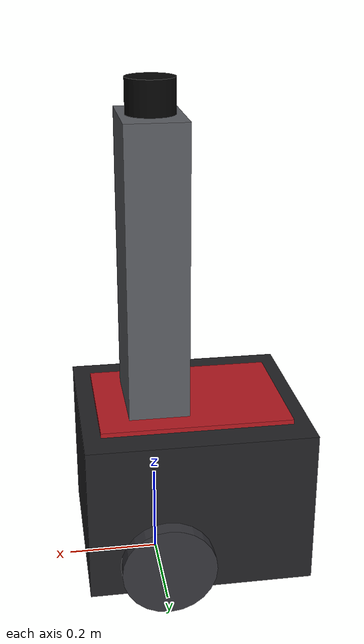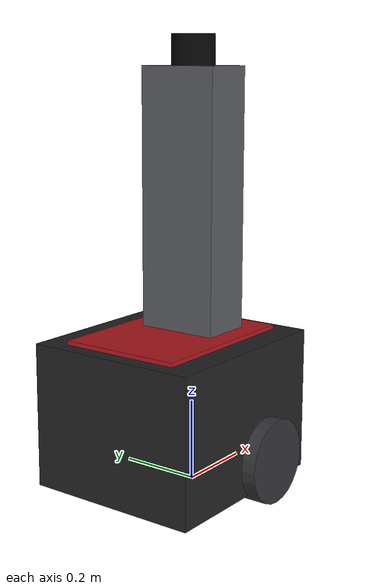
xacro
<?xml version="1.0"?>
<robot name="tetra_dsv_s" xmlns:xacro="http://www.ros.org/wiki/xacro">

  <xacro:arg name="use_gazebo" default="false"/>
  <!-- Passed through to the Gazebo systems; see tetra_dsv_s.gazebo.xacro. -->
  <xacro:arg name="odometry_source" default="wheel"/>

  <xacro:include filename="$(find tetra_dsv_s_description)/urdf/common.xacro"/>
  <xacro:include filename="$(find tetra_dsv_s_description)/urdf/tetra_dsv_s_base.xacro"/>
  <xacro:include filename="$(find tetra_dsv_s_description)/urdf/sensor_mast.xacro"/>

  <xacro:if value="$(arg use_gazebo)">
    <xacro:include filename="$(find tetra_dsv_s_description)/urdf/tetra_dsv_s.gazebo.xacro"/>
  </xacro:if>

</robot>

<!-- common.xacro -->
<robot xmlns:xacro="http://www.ros.org/wiki/xacro">

  <!-- Materials                                                             -->
  <material name="tetra_body">   <color rgba="0.13 0.13 0.14 1.0"/></material>
  <material name="tetra_accent"> <color rgba="0.70 0.09 0.12 1.0"/></material>
  <material name="tetra_wheel">  <color rgba="0.20 0.20 0.22 1.0"/></material>
  <material name="tetra_caster"> <color rgba="0.75 0.78 0.45 1.0"/></material>
  <material name="mast_gray">    <color rgba="0.35 0.36 0.38 1.0"/></material>
  <material name="sensor_black"> <color rgba="0.02 0.02 0.02 1.0"/></material>
  <material name="frame_marker"> <color rgba="0.0  0.8  0.0  0.5"/></material>

  <!-- Inertia helpers                                                       -->
  <xacro:macro name="box_inertial" params="mass x y z *origin">
    <inertial>
      <xacro:insert_block name="origin"/>
      <mass value="${mass}"/>
      <inertia ixx="${mass * (y*y + z*z) / 12.0}" ixy="0" ixz="0"
               iyy="${mass * (x*x + z*z) / 12.0}" iyz="0"
               izz="${mass * (x*x + y*y) / 12.0}"/>
    </inertial>
  </xacro:macro>

  <!-- Cylinder spinning about its own Z; caller rotates via *origin. -->
  <xacro:macro name="cylinder_inertial" params="mass radius length *origin">
    <inertial>
      <xacro:insert_block name="origin"/>
      <mass value="${mass}"/>
      <inertia ixx="${mass * (3.0*radius*radius + length*length) / 12.0}" ixy="0" ixz="0"
               iyy="${mass * (3.0*radius*radius + length*length) / 12.0}" iyz="0"
               izz="${mass * radius * radius / 2.0}"/>
    </inertial>
  </xacro:macro>

  <xacro:macro name="sphere_inertial" params="mass radius *origin">
    <inertial>
      <xacro:insert_block name="origin"/>
      <mass value="${mass}"/>
      <inertia ixx="${2.0 * mass * radius * radius / 5.0}" ixy="0" ixz="0"
               iyy="${2.0 * mass * radius * radius / 5.0}" iyz="0"
               izz="${2.0 * mass * radius * radius / 5.0}"/>
    </inertial>
  </xacro:macro>

</robot>

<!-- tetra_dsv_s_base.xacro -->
<robot xmlns:xacro="http://www.ros.org/wiki/xacro">

  <!-- Official parameters                                                   -->

  <!-- Overall envelope: 485 x 430 x 380 mm  [MAN 표 1-1] -->
  <xacro:property name="base_x_size" value="0.485"/>
  <xacro:property name="base_y_size" value="0.430"/>
  <xacro:property name="base_z_size" value="0.380"/>

  <!-- Body centre offset from base_link, from the base_footprint outline
       box (0.4855 x 0.430) drawn at x = -0.07525 in [URDF]. -->
  <xacro:property name="body_center_x" value="-0.07525"/>

  <xacro:property name="wheel_radius"     value="0.1015"/>
  <xacro:property name="wheel_separation" value="0.438"/>
  <xacro:property name="wheel_width"      value="0.060"/>
  <xacro:property name="wheel_offset_x"   value="0.0"/>

  <xacro:property name="caster_offset_x" value="-0.230"/>
  <xacro:property name="caster_radius"   value="0.0475"/>

  <!-- Mass: robot 28 kg, max payload 30 kg [MAN 표 1-1].
       Split so the chassis carries the bulk and the wheels a plausible share
       of the 100 W PMSM + 20:1 reducer assemblies. -->
  <xacro:property name="chassis_mass" value="22.0"/>
  <xacro:property name="wheel_mass"   value="2.5"/>
  <xacro:property name="caster_mass"  value="0.5"/>

  <xacro:property name="ground_clearance" value="0.0325"/>
  <xacro:property name="body_height" value="${base_z_size - ground_clearance}"/>
  <xacro:property name="body_center_z"
                  value="${ground_clearance + body_height / 2.0 - wheel_radius}"/>

  <!-- Centre of gravity, 129.16 mm above the chassis underside per 그림 2-2. -->
  <xacro:property name="cog_x" value="${body_center_x}"/>
  <xacro:property name="cog_z" value="${ground_clearance + 0.12916 - wheel_radius}"/>

  <!-- Top surface of the mount plate, in base_link coordinates.
       Total height 380 mm above ground, base_link sits at wheel_radius. -->
  <xacro:property name="mount_plate_z" value="${base_z_size - wheel_radius}"/>

  <xacro:property name="max_linear_velocity"  value="1.5"/>
  <xacro:property name="max_angular_velocity" value="1.5"/>

  <!-- Chassis                                                               -->
  <link name="base_footprint"/>

  <joint name="base_footprint_joint" type="fixed">
    <parent link="base_footprint"/>
    <child  link="base_link"/>
    <origin xyz="0 0 ${wheel_radius}" rpy="0 0 0"/>
  </joint>

  <link name="base_link">
    <xacro:box_inertial mass="${chassis_mass}"
                        x="${base_x_size}" y="${base_y_size}" z="${body_height}">
      <origin xyz="${cog_x} 0 ${cog_z}" rpy="0 0 0"/>
    </xacro:box_inertial>

    <!-- Body shell: chassis underside up to the mount plate. Its bottom face
         sits at ground_clearance, NOT at the ground - see the note there. -->
    <visual>
      <origin xyz="${body_center_x} 0 ${body_center_z}" rpy="0 0 0"/>
      <geometry>
        <box size="${base_x_size} ${base_y_size} ${body_height}"/>
      </geometry>
      <material name="tetra_body"/>
    </visual>
    <collision>
      <origin xyz="${body_center_x} 0 ${body_center_z}" rpy="0 0 0"/>
      <geometry>
        <box size="${base_x_size} ${base_y_size} ${body_height}"/>
      </geometry>
    </collision>

    <!-- Mount plate: 409.9 x 300 mm tap field [MAN 그림 2-3]. Visual only. -->
    <visual>
      <origin xyz="${body_center_x} 0 ${mount_plate_z + 0.005}" rpy="0 0 0"/>
      <geometry>
        <box size="0.4099 0.300 0.010"/>
      </geometry>
      <material name="tetra_accent"/>
    </visual>
  </link>

  <!-- Drive wheels                                                          -->
  <xacro:macro name="drive_wheel" params="prefix reflect">
    <link name="${prefix}_wheel_link">
      <xacro:cylinder_inertial mass="${wheel_mass}"
                               radius="${wheel_radius}" length="${wheel_width}">
        <origin xyz="0 0 0" rpy="${pi/2.0} 0 0"/>
      </xacro:cylinder_inertial>
      <visual>
        <origin xyz="0 0 0" rpy="${pi/2.0} 0 0"/>
        <geometry>
          <cylinder radius="${wheel_radius}" length="${wheel_width}"/>
        </geometry>
        <material name="tetra_wheel"/>
      </visual>
      <collision>
        <origin xyz="0 0 0" rpy="${pi/2.0} 0 0"/>
        <geometry>
          <cylinder radius="${wheel_radius}" length="${wheel_width}"/>
        </geometry>
      </collision>
    </link>

    <joint name="${prefix}_wheel_joint" type="continuous">
      <parent link="base_link"/>
      <child  link="${prefix}_wheel_link"/>
      <origin xyz="${wheel_offset_x} ${reflect * wheel_separation / 2.0} 0" rpy="0 0 0"/>
      <axis xyz="0 1 0"/>
      <dynamics damping="0.05" friction="0.1"/>
    </joint>
  </xacro:macro>

  <xacro:drive_wheel prefix="left"  reflect="1"/>
  <xacro:drive_wheel prefix="right" reflect="-1"/>

  <!-- Rear caster                                                           -->
  <link name="rear_caster_link">
    <xacro:sphere_inertial mass="${caster_mass}" radius="${caster_radius}">
      <origin xyz="0 0 0" rpy="0 0 0"/>
    </xacro:sphere_inertial>
    <visual>
      <origin xyz="0 0 0" rpy="0 0 0"/>
      <geometry><sphere radius="${caster_radius}"/></geometry>
      <material name="tetra_caster"/>
    </visual>
    <collision>
      <origin xyz="0 0 0" rpy="0 0 0"/>
      <geometry><sphere radius="${caster_radius}"/></geometry>
    </collision>
  </link>

  <joint name="rear_caster_joint" type="continuous">
    <parent link="base_link"/>
    <child  link="rear_caster_link"/>
    <origin xyz="${caster_offset_x} 0 ${caster_radius - wheel_radius}" rpy="0 0 0"/>
    <axis xyz="0 0 1"/>
    <dynamics damping="0.001" friction="0.0"/>
  </joint>

  <!-- On-board IMU (iAHRS). Pose from [URDF] base_link_to_imu_link.          -->
  <link name="imu_link"/>
  <joint name="imu_joint" type="fixed">
    <parent link="base_link"/>
    <child  link="imu_link"/>
    <origin xyz="0 0 0.232" rpy="0 0 0"/>
  </joint>

</robot>

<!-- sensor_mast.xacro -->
<robot xmlns:xacro="http://www.ros.org/wiki/xacro">

  <!-- Mast geometry                                                         -->
  <xacro:property name="mast_x_size" value="0.130"/>   <!-- fore-aft  -->
  <xacro:property name="mast_y_size" value="0.200"/>   <!-- left-right -->
  <xacro:property name="mast_z_size" value="0.630"/>
  <xacro:property name="mast_mass"   value="3.0"/>

  <!-- Planar placement on the mount plate. Measure and correct these two. -->
  <xacro:property name="mast_offset_x" value="0.0"/>
  <xacro:property name="mast_offset_y" value="0.0"/>

  <!-- Derived heights, all in base_link coordinates. -->
  <xacro:property name="mast_base_z"   value="${mount_plate_z}"/>
  <xacro:property name="mast_center_z" value="${mast_base_z + mast_z_size / 2.0}"/>
  <xacro:property name="mast_top_z"    value="${mast_base_z + mast_z_size}"/>

  <!-- Velodyne VLP-16 (datasheet: 103.3 mm dia, 71.7 mm tall, 0.83 kg)      -->
  <!-- Optical centre sits 37.7 mm above the mounting face.                  -->
  <xacro:property name="vlp16_radius"       value="0.05165"/>
  <xacro:property name="vlp16_height"       value="0.0717"/>
  <xacro:property name="vlp16_mass"         value="0.83"/>
  <xacro:property name="vlp16_optical_rise" value="0.0377"/>

  <!-- Mast column                                                           -->
  <link name="lidar_mast_link">
    <xacro:box_inertial mass="${mast_mass}"
                        x="${mast_x_size}" y="${mast_y_size}" z="${mast_z_size}">
      <origin xyz="0 0 0" rpy="0 0 0"/>
    </xacro:box_inertial>
    <visual>
      <origin xyz="0 0 0" rpy="0 0 0"/>
      <geometry>
        <box size="${mast_x_size} ${mast_y_size} ${mast_z_size}"/>
      </geometry>
      <material name="mast_gray"/>
    </visual>
    <collision>
      <origin xyz="0 0 0" rpy="0 0 0"/>
      <geometry>
        <box size="${mast_x_size} ${mast_y_size} ${mast_z_size}"/>
      </geometry>
    </collision>
  </link>

  <joint name="lidar_mast_joint" type="fixed">
    <parent link="base_link"/>
    <child  link="lidar_mast_link"/>
    <origin xyz="${mast_offset_x} ${mast_offset_y} ${mast_center_z}" rpy="0 0 0"/>
  </joint>

  <!-- VLP-16 on top of the mast                                             -->
  <link name="velodyne_link">
    <xacro:cylinder_inertial mass="${vlp16_mass}"
                             radius="${vlp16_radius}" length="${vlp16_height}">
      <origin xyz="0 0 0" rpy="0 0 0"/>
    </xacro:cylinder_inertial>
    <visual>
      <origin xyz="0 0 ${vlp16_height/2.0 - vlp16_optical_rise}" rpy="0 0 0"/>
      <geometry>
        <cylinder radius="${vlp16_radius}" length="${vlp16_height}"/>
      </geometry>
      <material name="sensor_black"/>
    </visual>
    <collision>
      <origin xyz="0 0 ${vlp16_height/2.0 - vlp16_optical_rise}" rpy="0 0 0"/>
      <geometry>
        <cylinder radius="${vlp16_radius}" length="${vlp16_height}"/>
      </geometry>
    </collision>
  </link>

  <!-- Child of the mast, so re-siting the mast moves the LiDAR with it. -->
  <joint name="velodyne_joint" type="fixed">
    <parent link="lidar_mast_link"/>
    <child  link="velodyne_link"/>
    <origin xyz="0 0 ${mast_z_size/2.0 + vlp16_optical_rise}" rpy="0 0 0"/>
  </joint>

  <!-- Camera observed at roughly mid-mast (~300 mm up the front face)        -->
  <xacro:property name="mast_camera_height" value="0.300"/>

  <link name="mast_camera_link"/>
  <joint name="mast_camera_joint" type="fixed">
    <parent link="lidar_mast_link"/>
    <child  link="mast_camera_link"/>
    <origin xyz="${mast_x_size / 2.0} 0 ${mast_camera_height - mast_z_size / 2.0}"
            rpy="0 0 0"/>
  </joint>

  <!-- REP-103 optical frame (z forward, x right, y down) for the same camera. -->
  <link name="mast_camera_optical_frame"/>
  <joint name="mast_camera_optical_joint" type="fixed">
    <parent link="mast_camera_link"/>
    <child  link="mast_camera_optical_frame"/>
    <origin xyz="0 0 0" rpy="${-pi/2.0} 0 ${-pi/2.0}"/>
  </joint>

</robot>
